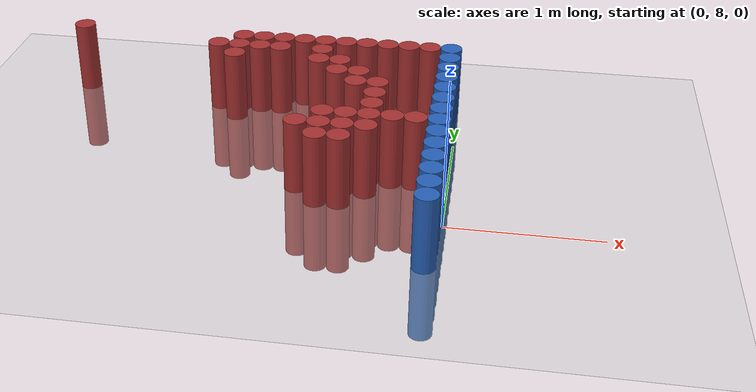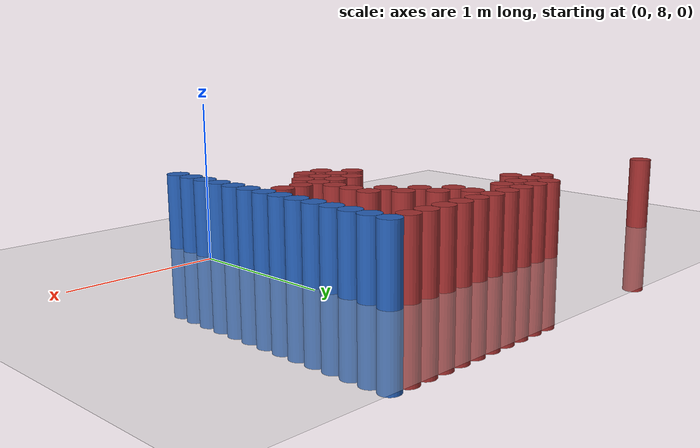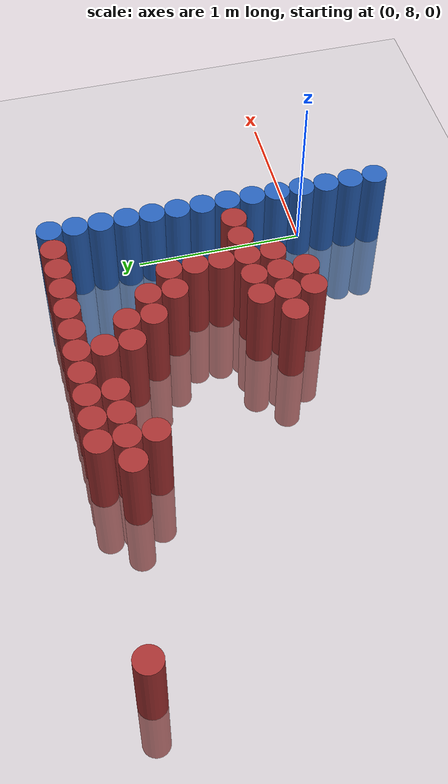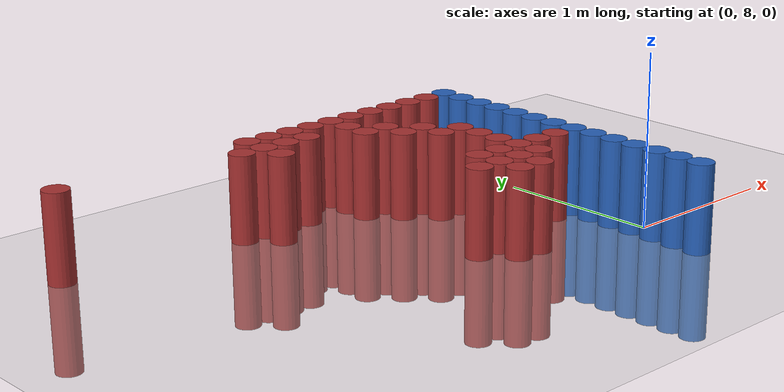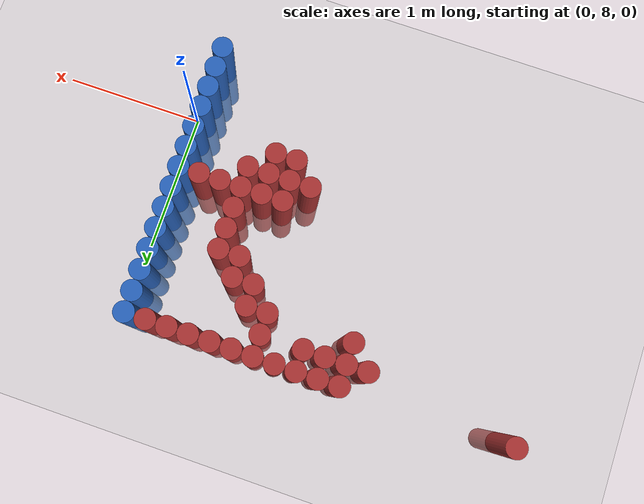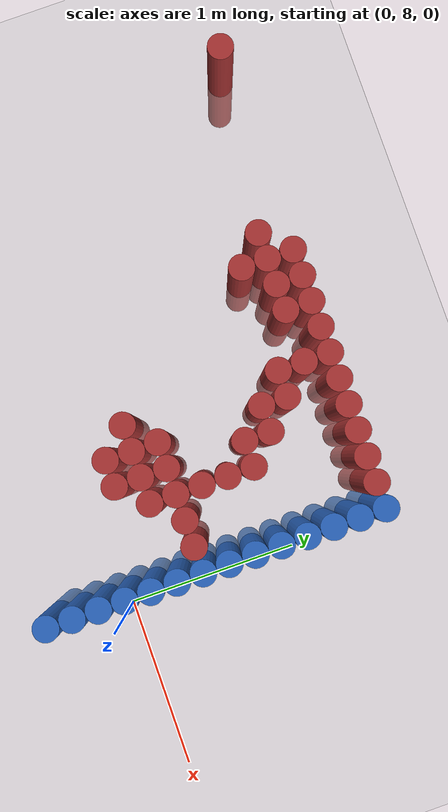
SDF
<sdf version="1.6">
 <world name="default">
  <model name="ground_plane">
   <static>1</static>
   <link name="link">
    <collision name="collision">
     <geometry><plane><normal>0 0 1</normal><size>100 100</size></plane></geometry>
     <surface><friction><ode><mu>100</mu><mu2>50</mu2></ode></friction></surface>
    </collision>
    <visual name="visual">
     <cast_shadows>0</cast_shadows>
     <geometry><plane><normal>0 0 1</normal><size>100 100</size></plane></geometry>
     <material>
      <script><uri>file://media/materials/scripts/gazebo.material</uri><name>Gazebo/Grey</name></script>
     </material>
    </visual>
   </link>
  </model>
  <model name="unit_cylinder_219">
   <static>1</static>
   <pose>-2.775000 9.525000 0.000000 0.000000 0.000000 0.000000</pose>
   <link name="link">
    <inertial>
     <mass>1</mass>
     <inertia><ixx>0.145833</ixx><ixy>0</ixy><ixz>0</ixz><iyy>0.145833</iyy><iyz>0</iyz><izz>0.125</izz></inertia>
    </inertial>
    <collision name="collision">
     <geometry><cylinder><radius>0.075000</radius><length>1</length></cylinder></geometry>
    </collision>
    <visual name="visual">
     <geometry><cylinder><radius>0.075000</radius><length>1</length></cylinder></geometry>
     <material>
      <ambient>0.648000 0.192000 0.192000 1</ambient>
      <diffuse>0.648000 0.192000 0.192000 1</diffuse>
     </material>
     <material>
      <script><name>Gazebo/Grey</name><uri>file://media/materials/scripts/gazebo.material</uri></script>
     </material>
    </visual>
   </link>
  </model>
  <model name="unit_cylinder_236">
   <static>1</static>
   <pose>-1.725000 9.375000 0.000000 0.000000 0.000000 0.000000</pose>
   <link name="link">
    <inertial>
     <mass>1</mass>
     <inertia><ixx>0.145833</ixx><ixy>0</ixy><ixz>0</ixz><iyy>0.145833</iyy><iyz>0</iyz><izz>0.125</izz></inertia>
    </inertial>
    <collision name="collision">
     <geometry><cylinder><radius>0.075000</radius><length>1</length></cylinder></geometry>
    </collision>
    <visual name="visual">
     <geometry><cylinder><radius>0.075000</radius><length>1</length></cylinder></geometry>
     <material>
      <ambient>0.648000 0.192000 0.192000 1</ambient>
      <diffuse>0.648000 0.192000 0.192000 1</diffuse>
     </material>
     <material>
      <script><name>Gazebo/Grey</name><uri>file://media/materials/scripts/gazebo.material</uri></script>
     </material>
    </visual>
   </link>
  </model>
  <model name="unit_cylinder_243">
   <static>1</static>
   <pose>-1.575000 9.225000 0.000000 0.000000 0.000000 0.000000</pose>
   <link name="link">
    <inertial>
     <mass>1</mass>
     <inertia><ixx>0.145833</ixx><ixy>0</ixy><ixz>0</ixz><iyy>0.145833</iyy><iyz>0</iyz><izz>0.125</izz></inertia>
    </inertial>
    <collision name="collision">
     <geometry><cylinder><radius>0.075000</radius><length>1</length></cylinder></geometry>
    </collision>
    <visual name="visual">
     <geometry><cylinder><radius>0.075000</radius><length>1</length></cylinder></geometry>
     <material>
      <ambient>0.648000 0.192000 0.192000 1</ambient>
      <diffuse>0.648000 0.192000 0.192000 1</diffuse>
     </material>
     <material>
      <script><name>Gazebo/Grey</name><uri>file://media/materials/scripts/gazebo.material</uri></script>
     </material>
    </visual>
   </link>
  </model>
  <model name="unit_cylinder_244">
   <static>1</static>
   <pose>-1.575000 9.375000 0.000000 0.000000 0.000000 0.000000</pose>
   <link name="link">
    <inertial>
     <mass>1</mass>
     <inertia><ixx>0.145833</ixx><ixy>0</ixy><ixz>0</ixz><iyy>0.145833</iyy><iyz>0</iyz><izz>0.125</izz></inertia>
    </inertial>
    <collision name="collision">
     <geometry><cylinder><radius>0.075000</radius><length>1</length></cylinder></geometry>
    </collision>
    <visual name="visual">
     <geometry><cylinder><radius>0.075000</radius><length>1</length></cylinder></geometry>
     <material>
      <ambient>0.648000 0.192000 0.192000 1</ambient>
      <diffuse>0.648000 0.192000 0.192000 1</diffuse>
     </material>
     <material>
      <script><name>Gazebo/Grey</name><uri>file://media/materials/scripts/gazebo.material</uri></script>
     </material>
    </visual>
   </link>
  </model>
  <model name="unit_cylinder_245">
   <static>1</static>
   <pose>-1.575000 9.525000 0.000000 0.000000 0.000000 0.000000</pose>
   <link name="link">
    <inertial>
     <mass>1</mass>
     <inertia><ixx>0.145833</ixx><ixy>0</ixy><ixz>0</ixz><iyy>0.145833</iyy><iyz>0</iyz><izz>0.125</izz></inertia>
    </inertial>
    <collision name="collision">
     <geometry><cylinder><radius>0.075000</radius><length>1</length></cylinder></geometry>
    </collision>
    <visual name="visual">
     <geometry><cylinder><radius>0.075000</radius><length>1</length></cylinder></geometry>
     <material>
      <ambient>0.648000 0.192000 0.192000 1</ambient>
      <diffuse>0.648000 0.192000 0.192000 1</diffuse>
     </material>
     <material>
      <script><name>Gazebo/Grey</name><uri>file://media/materials/scripts/gazebo.material</uri></script>
     </material>
    </visual>
   </link>
  </model>
  <model name="unit_cylinder_250">
   <static>1</static>
   <pose>-1.425000 9.375000 0.000000 0.000000 0.000000 0.000000</pose>
   <link name="link">
    <inertial>
     <mass>1</mass>
     <inertia><ixx>0.145833</ixx><ixy>0</ixy><ixz>0</ixz><iyy>0.145833</iyy><iyz>0</iyz><izz>0.125</izz></inertia>
    </inertial>
    <collision name="collision">
     <geometry><cylinder><radius>0.075000</radius><length>1</length></cylinder></geometry>
    </collision>
    <visual name="visual">
     <geometry><cylinder><radius>0.075000</radius><length>1</length></cylinder></geometry>
     <material>
      <ambient>0.648000 0.192000 0.192000 1</ambient>
      <diffuse>0.648000 0.192000 0.192000 1</diffuse>
     </material>
     <material>
      <script><name>Gazebo/Grey</name><uri>file://media/materials/scripts/gazebo.material</uri></script>
     </material>
    </visual>
   </link>
  </model>
  <model name="unit_cylinder_251">
   <static>1</static>
   <pose>-1.425000 9.525000 0.000000 0.000000 0.000000 0.000000</pose>
   <link name="link">
    <inertial>
     <mass>1</mass>
     <inertia><ixx>0.145833</ixx><ixy>0</ixy><ixz>0</ixz><iyy>0.145833</iyy><iyz>0</iyz><izz>0.125</izz></inertia>
    </inertial>
    <collision name="collision">
     <geometry><cylinder><radius>0.075000</radius><length>1</length></cylinder></geometry>
    </collision>
    <visual name="visual">
     <geometry><cylinder><radius>0.075000</radius><length>1</length></cylinder></geometry>
     <material>
      <ambient>0.648000 0.192000 0.192000 1</ambient>
      <diffuse>0.648000 0.192000 0.192000 1</diffuse>
     </material>
     <material>
      <script><name>Gazebo/Grey</name><uri>file://media/materials/scripts/gazebo.material</uri></script>
     </material>
    </visual>
   </link>
  </model>
  <model name="unit_cylinder_258">
   <static>1</static>
   <pose>-1.275000 9.375000 0.000000 0.000000 0.000000 0.000000</pose>
   <link name="link">
    <inertial>
     <mass>1</mass>
     <inertia><ixx>0.145833</ixx><ixy>0</ixy><ixz>0</ixz><iyy>0.145833</iyy><iyz>0</iyz><izz>0.125</izz></inertia>
    </inertial>
    <collision name="collision">
     <geometry><cylinder><radius>0.075000</radius><length>1</length></cylinder></geometry>
    </collision>
    <visual name="visual">
     <geometry><cylinder><radius>0.075000</radius><length>1</length></cylinder></geometry>
     <material>
      <ambient>0.648000 0.192000 0.192000 1</ambient>
      <diffuse>0.648000 0.192000 0.192000 1</diffuse>
     </material>
     <material>
      <script><name>Gazebo/Grey</name><uri>file://media/materials/scripts/gazebo.material</uri></script>
     </material>
    </visual>
   </link>
  </model>
  <model name="unit_cylinder_259">
   <static>1</static>
   <pose>-1.275000 9.525000 0.000000 0.000000 0.000000 0.000000</pose>
   <link name="link">
    <inertial>
     <mass>1</mass>
     <inertia><ixx>0.145833</ixx><ixy>0</ixy><ixz>0</ixz><iyy>0.145833</iyy><iyz>0</iyz><izz>0.125</izz></inertia>
    </inertial>
    <collision name="collision">
     <geometry><cylinder><radius>0.075000</radius><length>1</length></cylinder></geometry>
    </collision>
    <visual name="visual">
     <geometry><cylinder><radius>0.075000</radius><length>1</length></cylinder></geometry>
     <material>
      <ambient>0.648000 0.192000 0.192000 1</ambient>
      <diffuse>0.648000 0.192000 0.192000 1</diffuse>
     </material>
     <material>
      <script><name>Gazebo/Grey</name><uri>file://media/materials/scripts/gazebo.material</uri></script>
     </material>
    </visual>
   </link>
  </model>
  <model name="unit_cylinder_268">
   <static>1</static>
   <pose>-1.125000 9.525000 0.000000 0.000000 0.000000 0.000000</pose>
   <link name="link">
    <inertial>
     <mass>1</mass>
     <inertia><ixx>0.145833</ixx><ixy>0</ixy><ixz>0</ixz><iyy>0.145833</iyy><iyz>0</iyz><izz>0.125</izz></inertia>
    </inertial>
    <collision name="collision">
     <geometry><cylinder><radius>0.075000</radius><length>1</length></cylinder></geometry>
    </collision>
    <visual name="visual">
     <geometry><cylinder><radius>0.075000</radius><length>1</length></cylinder></geometry>
     <material>
      <ambient>0.648000 0.192000 0.192000 1</ambient>
      <diffuse>0.648000 0.192000 0.192000 1</diffuse>
     </material>
     <material>
      <script><name>Gazebo/Grey</name><uri>file://media/materials/scripts/gazebo.material</uri></script>
     </material>
    </visual>
   </link>
  </model>
  <model name="unit_cylinder_275">
   <static>1</static>
   <pose>-0.975000 8.325000 0.000000 0.000000 0.000000 0.000000</pose>
   <link name="link">
    <inertial>
     <mass>1</mass>
     <inertia><ixx>0.145833</ixx><ixy>0</ixy><ixz>0</ixz><iyy>0.145833</iyy><iyz>0</iyz><izz>0.125</izz></inertia>
    </inertial>
    <collision name="collision">
     <geometry><cylinder><radius>0.075000</radius><length>1</length></cylinder></geometry>
    </collision>
    <visual name="visual">
     <geometry><cylinder><radius>0.075000</radius><length>1</length></cylinder></geometry>
     <material>
      <ambient>0.648000 0.192000 0.192000 1</ambient>
      <diffuse>0.648000 0.192000 0.192000 1</diffuse>
     </material>
     <material>
      <script><name>Gazebo/Grey</name><uri>file://media/materials/scripts/gazebo.material</uri></script>
     </material>
    </visual>
   </link>
  </model>
  <model name="unit_cylinder_276">
   <static>1</static>
   <pose>-0.975000 9.225000 0.000000 0.000000 0.000000 0.000000</pose>
   <link name="link">
    <inertial>
     <mass>1</mass>
     <inertia><ixx>0.145833</ixx><ixy>0</ixy><ixz>0</ixz><iyy>0.145833</iyy><iyz>0</iyz><izz>0.125</izz></inertia>
    </inertial>
    <collision name="collision">
     <geometry><cylinder><radius>0.075000</radius><length>1</length></cylinder></geometry>
    </collision>
    <visual name="visual">
     <geometry><cylinder><radius>0.075000</radius><length>1</length></cylinder></geometry>
     <material>
      <ambient>0.648000 0.192000 0.192000 1</ambient>
      <diffuse>0.648000 0.192000 0.192000 1</diffuse>
     </material>
     <material>
      <script><name>Gazebo/Grey</name><uri>file://media/materials/scripts/gazebo.material</uri></script>
     </material>
    </visual>
   </link>
  </model>
  <model name="unit_cylinder_277">
   <static>1</static>
   <pose>-0.975000 9.375000 0.000000 0.000000 0.000000 0.000000</pose>
   <link name="link">
    <inertial>
     <mass>1</mass>
     <inertia><ixx>0.145833</ixx><ixy>0</ixy><ixz>0</ixz><iyy>0.145833</iyy><iyz>0</iyz><izz>0.125</izz></inertia>
    </inertial>
    <collision name="collision">
     <geometry><cylinder><radius>0.075000</radius><length>1</length></cylinder></geometry>
    </collision>
    <visual name="visual">
     <geometry><cylinder><radius>0.075000</radius><length>1</length></cylinder></geometry>
     <material>
      <ambient>0.648000 0.192000 0.192000 1</ambient>
      <diffuse>0.648000 0.192000 0.192000 1</diffuse>
     </material>
     <material>
      <script><name>Gazebo/Grey</name><uri>file://media/materials/scripts/gazebo.material</uri></script>
     </material>
    </visual>
   </link>
  </model>
  <model name="unit_cylinder_278">
   <static>1</static>
   <pose>-0.975000 9.525000 0.000000 0.000000 0.000000 0.000000</pose>
   <link name="link">
    <inertial>
     <mass>1</mass>
     <inertia><ixx>0.145833</ixx><ixy>0</ixy><ixz>0</ixz><iyy>0.145833</iyy><iyz>0</iyz><izz>0.125</izz></inertia>
    </inertial>
    <collision name="collision">
     <geometry><cylinder><radius>0.075000</radius><length>1</length></cylinder></geometry>
    </collision>
    <visual name="visual">
     <geometry><cylinder><radius>0.075000</radius><length>1</length></cylinder></geometry>
     <material>
      <ambient>0.648000 0.192000 0.192000 1</ambient>
      <diffuse>0.648000 0.192000 0.192000 1</diffuse>
     </material>
     <material>
      <script><name>Gazebo/Grey</name><uri>file://media/materials/scripts/gazebo.material</uri></script>
     </material>
    </visual>
   </link>
  </model>
  <model name="unit_cylinder_282">
   <static>1</static>
   <pose>-0.825000 8.175000 0.000000 0.000000 0.000000 0.000000</pose>
   <link name="link">
    <inertial>
     <mass>1</mass>
     <inertia><ixx>0.145833</ixx><ixy>0</ixy><ixz>0</ixz><iyy>0.145833</iyy><iyz>0</iyz><izz>0.125</izz></inertia>
    </inertial>
    <collision name="collision">
     <geometry><cylinder><radius>0.075000</radius><length>1</length></cylinder></geometry>
    </collision>
    <visual name="visual">
     <geometry><cylinder><radius>0.075000</radius><length>1</length></cylinder></geometry>
     <material>
      <ambient>0.648000 0.192000 0.192000 1</ambient>
      <diffuse>0.648000 0.192000 0.192000 1</diffuse>
     </material>
     <material>
      <script><name>Gazebo/Grey</name><uri>file://media/materials/scripts/gazebo.material</uri></script>
     </material>
    </visual>
   </link>
  </model>
  <model name="unit_cylinder_283">
   <static>1</static>
   <pose>-0.825000 8.325000 0.000000 0.000000 0.000000 0.000000</pose>
   <link name="link">
    <inertial>
     <mass>1</mass>
     <inertia><ixx>0.145833</ixx><ixy>0</ixy><ixz>0</ixz><iyy>0.145833</iyy><iyz>0</iyz><izz>0.125</izz></inertia>
    </inertial>
    <collision name="collision">
     <geometry><cylinder><radius>0.075000</radius><length>1</length></cylinder></geometry>
    </collision>
    <visual name="visual">
     <geometry><cylinder><radius>0.075000</radius><length>1</length></cylinder></geometry>
     <material>
      <ambient>0.648000 0.192000 0.192000 1</ambient>
      <diffuse>0.648000 0.192000 0.192000 1</diffuse>
     </material>
     <material>
      <script><name>Gazebo/Grey</name><uri>file://media/materials/scripts/gazebo.material</uri></script>
     </material>
    </visual>
   </link>
  </model>
  <model name="unit_cylinder_284">
   <static>1</static>
   <pose>-0.825000 8.475000 0.000000 0.000000 0.000000 0.000000</pose>
   <link name="link">
    <inertial>
     <mass>1</mass>
     <inertia><ixx>0.145833</ixx><ixy>0</ixy><ixz>0</ixz><iyy>0.145833</iyy><iyz>0</iyz><izz>0.125</izz></inertia>
    </inertial>
    <collision name="collision">
     <geometry><cylinder><radius>0.075000</radius><length>1</length></cylinder></geometry>
    </collision>
    <visual name="visual">
     <geometry><cylinder><radius>0.075000</radius><length>1</length></cylinder></geometry>
     <material>
      <ambient>0.648000 0.192000 0.192000 1</ambient>
      <diffuse>0.648000 0.192000 0.192000 1</diffuse>
     </material>
     <material>
      <script><name>Gazebo/Grey</name><uri>file://media/materials/scripts/gazebo.material</uri></script>
     </material>
    </visual>
   </link>
  </model>
  <model name="unit_cylinder_285">
   <static>1</static>
   <pose>-0.825000 9.075000 0.000000 0.000000 0.000000 0.000000</pose>
   <link name="link">
    <inertial>
     <mass>1</mass>
     <inertia><ixx>0.145833</ixx><ixy>0</ixy><ixz>0</ixz><iyy>0.145833</iyy><iyz>0</iyz><izz>0.125</izz></inertia>
    </inertial>
    <collision name="collision">
     <geometry><cylinder><radius>0.075000</radius><length>1</length></cylinder></geometry>
    </collision>
    <visual name="visual">
     <geometry><cylinder><radius>0.075000</radius><length>1</length></cylinder></geometry>
     <material>
      <ambient>0.648000 0.192000 0.192000 1</ambient>
      <diffuse>0.648000 0.192000 0.192000 1</diffuse>
     </material>
     <material>
      <script><name>Gazebo/Grey</name><uri>file://media/materials/scripts/gazebo.material</uri></script>
     </material>
    </visual>
   </link>
  </model>
  <model name="unit_cylinder_286">
   <static>1</static>
   <pose>-0.825000 9.225000 0.000000 0.000000 0.000000 0.000000</pose>
   <link name="link">
    <inertial>
     <mass>1</mass>
     <inertia><ixx>0.145833</ixx><ixy>0</ixy><ixz>0</ixz><iyy>0.145833</iyy><iyz>0</iyz><izz>0.125</izz></inertia>
    </inertial>
    <collision name="collision">
     <geometry><cylinder><radius>0.075000</radius><length>1</length></cylinder></geometry>
    </collision>
    <visual name="visual">
     <geometry><cylinder><radius>0.075000</radius><length>1</length></cylinder></geometry>
     <material>
      <ambient>0.648000 0.192000 0.192000 1</ambient>
      <diffuse>0.648000 0.192000 0.192000 1</diffuse>
     </material>
     <material>
      <script><name>Gazebo/Grey</name><uri>file://media/materials/scripts/gazebo.material</uri></script>
     </material>
    </visual>
   </link>
  </model>
  <model name="unit_cylinder_287">
   <static>1</static>
   <pose>-0.825000 9.525000 0.000000 0.000000 0.000000 0.000000</pose>
   <link name="link">
    <inertial>
     <mass>1</mass>
     <inertia><ixx>0.145833</ixx><ixy>0</ixy><ixz>0</ixz><iyy>0.145833</iyy><iyz>0</iyz><izz>0.125</izz></inertia>
    </inertial>
    <collision name="collision">
     <geometry><cylinder><radius>0.075000</radius><length>1</length></cylinder></geometry>
    </collision>
    <visual name="visual">
     <geometry><cylinder><radius>0.075000</radius><length>1</length></cylinder></geometry>
     <material>
      <ambient>0.648000 0.192000 0.192000 1</ambient>
      <diffuse>0.648000 0.192000 0.192000 1</diffuse>
     </material>
     <material>
      <script><name>Gazebo/Grey</name><uri>file://media/materials/scripts/gazebo.material</uri></script>
     </material>
    </visual>
   </link>
  </model>
  <model name="unit_cylinder_292">
   <static>1</static>
   <pose>-0.675000 8.175000 0.000000 0.000000 0.000000 0.000000</pose>
   <link name="link">
    <inertial>
     <mass>1</mass>
     <inertia><ixx>0.145833</ixx><ixy>0</ixy><ixz>0</ixz><iyy>0.145833</iyy><iyz>0</iyz><izz>0.125</izz></inertia>
    </inertial>
    <collision name="collision">
     <geometry><cylinder><radius>0.075000</radius><length>1</length></cylinder></geometry>
    </collision>
    <visual name="visual">
     <geometry><cylinder><radius>0.075000</radius><length>1</length></cylinder></geometry>
     <material>
      <ambient>0.648000 0.192000 0.192000 1</ambient>
      <diffuse>0.648000 0.192000 0.192000 1</diffuse>
     </material>
     <material>
      <script><name>Gazebo/Grey</name><uri>file://media/materials/scripts/gazebo.material</uri></script>
     </material>
    </visual>
   </link>
  </model>
  <model name="unit_cylinder_293">
   <static>1</static>
   <pose>-0.675000 8.325000 0.000000 0.000000 0.000000 0.000000</pose>
   <link name="link">
    <inertial>
     <mass>1</mass>
     <inertia><ixx>0.145833</ixx><ixy>0</ixy><ixz>0</ixz><iyy>0.145833</iyy><iyz>0</iyz><izz>0.125</izz></inertia>
    </inertial>
    <collision name="collision">
     <geometry><cylinder><radius>0.075000</radius><length>1</length></cylinder></geometry>
    </collision>
    <visual name="visual">
     <geometry><cylinder><radius>0.075000</radius><length>1</length></cylinder></geometry>
     <material>
      <ambient>0.648000 0.192000 0.192000 1</ambient>
      <diffuse>0.648000 0.192000 0.192000 1</diffuse>
     </material>
     <material>
      <script><name>Gazebo/Grey</name><uri>file://media/materials/scripts/gazebo.material</uri></script>
     </material>
    </visual>
   </link>
  </model>
  <model name="unit_cylinder_294">
   <static>1</static>
   <pose>-0.675000 8.475000 0.000000 0.000000 0.000000 0.000000</pose>
   <link name="link">
    <inertial>
     <mass>1</mass>
     <inertia><ixx>0.145833</ixx><ixy>0</ixy><ixz>0</ixz><iyy>0.145833</iyy><iyz>0</iyz><izz>0.125</izz></inertia>
    </inertial>
    <collision name="collision">
     <geometry><cylinder><radius>0.075000</radius><length>1</length></cylinder></geometry>
    </collision>
    <visual name="visual">
     <geometry><cylinder><radius>0.075000</radius><length>1</length></cylinder></geometry>
     <material>
      <ambient>0.648000 0.192000 0.192000 1</ambient>
      <diffuse>0.648000 0.192000 0.192000 1</diffuse>
     </material>
     <material>
      <script><name>Gazebo/Grey</name><uri>file://media/materials/scripts/gazebo.material</uri></script>
     </material>
    </visual>
   </link>
  </model>
  <model name="unit_cylinder_295">
   <static>1</static>
   <pose>-0.675000 8.925000 0.000000 0.000000 0.000000 0.000000</pose>
   <link name="link">
    <inertial>
     <mass>1</mass>
     <inertia><ixx>0.145833</ixx><ixy>0</ixy><ixz>0</ixz><iyy>0.145833</iyy><iyz>0</iyz><izz>0.125</izz></inertia>
    </inertial>
    <collision name="collision">
     <geometry><cylinder><radius>0.075000</radius><length>1</length></cylinder></geometry>
    </collision>
    <visual name="visual">
     <geometry><cylinder><radius>0.075000</radius><length>1</length></cylinder></geometry>
     <material>
      <ambient>0.648000 0.192000 0.192000 1</ambient>
      <diffuse>0.648000 0.192000 0.192000 1</diffuse>
     </material>
     <material>
      <script><name>Gazebo/Grey</name><uri>file://media/materials/scripts/gazebo.material</uri></script>
     </material>
    </visual>
   </link>
  </model>
  <model name="unit_cylinder_296">
   <static>1</static>
   <pose>-0.675000 9.075000 0.000000 0.000000 0.000000 0.000000</pose>
   <link name="link">
    <inertial>
     <mass>1</mass>
     <inertia><ixx>0.145833</ixx><ixy>0</ixy><ixz>0</ixz><iyy>0.145833</iyy><iyz>0</iyz><izz>0.125</izz></inertia>
    </inertial>
    <collision name="collision">
     <geometry><cylinder><radius>0.075000</radius><length>1</length></cylinder></geometry>
    </collision>
    <visual name="visual">
     <geometry><cylinder><radius>0.075000</radius><length>1</length></cylinder></geometry>
     <material>
      <ambient>0.648000 0.192000 0.192000 1</ambient>
      <diffuse>0.648000 0.192000 0.192000 1</diffuse>
     </material>
     <material>
      <script><name>Gazebo/Grey</name><uri>file://media/materials/scripts/gazebo.material</uri></script>
     </material>
    </visual>
   </link>
  </model>
  <model name="unit_cylinder_297">
   <static>1</static>
   <pose>-0.675000 9.525000 0.000000 0.000000 0.000000 0.000000</pose>
   <link name="link">
    <inertial>
     <mass>1</mass>
     <inertia><ixx>0.145833</ixx><ixy>0</ixy><ixz>0</ixz><iyy>0.145833</iyy><iyz>0</iyz><izz>0.125</izz></inertia>
    </inertial>
    <collision name="collision">
     <geometry><cylinder><radius>0.075000</radius><length>1</length></cylinder></geometry>
    </collision>
    <visual name="visual">
     <geometry><cylinder><radius>0.075000</radius><length>1</length></cylinder></geometry>
     <material>
      <ambient>0.648000 0.192000 0.192000 1</ambient>
      <diffuse>0.648000 0.192000 0.192000 1</diffuse>
     </material>
     <material>
      <script><name>Gazebo/Grey</name><uri>file://media/materials/scripts/gazebo.material</uri></script>
     </material>
    </visual>
   </link>
  </model>
  <model name="unit_cylinder_301">
   <static>1</static>
   <pose>-0.525000 8.325000 0.000000 0.000000 0.000000 0.000000</pose>
   <link name="link">
    <inertial>
     <mass>1</mass>
     <inertia><ixx>0.145833</ixx><ixy>0</ixy><ixz>0</ixz><iyy>0.145833</iyy><iyz>0</iyz><izz>0.125</izz></inertia>
    </inertial>
    <collision name="collision">
     <geometry><cylinder><radius>0.075000</radius><length>1</length></cylinder></geometry>
    </collision>
    <visual name="visual">
     <geometry><cylinder><radius>0.075000</radius><length>1</length></cylinder></geometry>
     <material>
      <ambient>0.648000 0.192000 0.192000 1</ambient>
      <diffuse>0.648000 0.192000 0.192000 1</diffuse>
     </material>
     <material>
      <script><name>Gazebo/Grey</name><uri>file://media/materials/scripts/gazebo.material</uri></script>
     </material>
    </visual>
   </link>
  </model>
  <model name="unit_cylinder_302">
   <static>1</static>
   <pose>-0.525000 8.475000 0.000000 0.000000 0.000000 0.000000</pose>
   <link name="link">
    <inertial>
     <mass>1</mass>
     <inertia><ixx>0.145833</ixx><ixy>0</ixy><ixz>0</ixz><iyy>0.145833</iyy><iyz>0</iyz><izz>0.125</izz></inertia>
    </inertial>
    <collision name="collision">
     <geometry><cylinder><radius>0.075000</radius><length>1</length></cylinder></geometry>
    </collision>
    <visual name="visual">
     <geometry><cylinder><radius>0.075000</radius><length>1</length></cylinder></geometry>
     <material>
      <ambient>0.648000 0.192000 0.192000 1</ambient>
      <diffuse>0.648000 0.192000 0.192000 1</diffuse>
     </material>
     <material>
      <script><name>Gazebo/Grey</name><uri>file://media/materials/scripts/gazebo.material</uri></script>
     </material>
    </visual>
   </link>
  </model>
  <model name="unit_cylinder_303">
   <static>1</static>
   <pose>-0.525000 8.625000 0.000000 0.000000 0.000000 0.000000</pose>
   <link name="link">
    <inertial>
     <mass>1</mass>
     <inertia><ixx>0.145833</ixx><ixy>0</ixy><ixz>0</ixz><iyy>0.145833</iyy><iyz>0</iyz><izz>0.125</izz></inertia>
    </inertial>
    <collision name="collision">
     <geometry><cylinder><radius>0.075000</radius><length>1</length></cylinder></geometry>
    </collision>
    <visual name="visual">
     <geometry><cylinder><radius>0.075000</radius><length>1</length></cylinder></geometry>
     <material>
      <ambient>0.648000 0.192000 0.192000 1</ambient>
      <diffuse>0.648000 0.192000 0.192000 1</diffuse>
     </material>
     <material>
      <script><name>Gazebo/Grey</name><uri>file://media/materials/scripts/gazebo.material</uri></script>
     </material>
    </visual>
   </link>
  </model>
  <model name="unit_cylinder_304">
   <static>1</static>
   <pose>-0.525000 8.775000 0.000000 0.000000 0.000000 0.000000</pose>
   <link name="link">
    <inertial>
     <mass>1</mass>
     <inertia><ixx>0.145833</ixx><ixy>0</ixy><ixz>0</ixz><iyy>0.145833</iyy><iyz>0</iyz><izz>0.125</izz></inertia>
    </inertial>
    <collision name="collision">
     <geometry><cylinder><radius>0.075000</radius><length>1</length></cylinder></geometry>
    </collision>
    <visual name="visual">
     <geometry><cylinder><radius>0.075000</radius><length>1</length></cylinder></geometry>
     <material>
      <ambient>0.648000 0.192000 0.192000 1</ambient>
      <diffuse>0.648000 0.192000 0.192000 1</diffuse>
     </material>
     <material>
      <script><name>Gazebo/Grey</name><uri>file://media/materials/scripts/gazebo.material</uri></script>
     </material>
    </visual>
   </link>
  </model>
  <model name="unit_cylinder_305">
   <static>1</static>
   <pose>-0.525000 8.925000 0.000000 0.000000 0.000000 0.000000</pose>
   <link name="link">
    <inertial>
     <mass>1</mass>
     <inertia><ixx>0.145833</ixx><ixy>0</ixy><ixz>0</ixz><iyy>0.145833</iyy><iyz>0</iyz><izz>0.125</izz></inertia>
    </inertial>
    <collision name="collision">
     <geometry><cylinder><radius>0.075000</radius><length>1</length></cylinder></geometry>
    </collision>
    <visual name="visual">
     <geometry><cylinder><radius>0.075000</radius><length>1</length></cylinder></geometry>
     <material>
      <ambient>0.648000 0.192000 0.192000 1</ambient>
      <diffuse>0.648000 0.192000 0.192000 1</diffuse>
     </material>
     <material>
      <script><name>Gazebo/Grey</name><uri>file://media/materials/scripts/gazebo.material</uri></script>
     </material>
    </visual>
   </link>
  </model>
  <model name="unit_cylinder_306">
   <static>1</static>
   <pose>-0.525000 9.525000 0.000000 0.000000 0.000000 0.000000</pose>
   <link name="link">
    <inertial>
     <mass>1</mass>
     <inertia><ixx>0.145833</ixx><ixy>0</ixy><ixz>0</ixz><iyy>0.145833</iyy><iyz>0</iyz><izz>0.125</izz></inertia>
    </inertial>
    <collision name="collision">
     <geometry><cylinder><radius>0.075000</radius><length>1</length></cylinder></geometry>
    </collision>
    <visual name="visual">
     <geometry><cylinder><radius>0.075000</radius><length>1</length></cylinder></geometry>
     <material>
      <ambient>0.648000 0.192000 0.192000 1</ambient>
      <diffuse>0.648000 0.192000 0.192000 1</diffuse>
     </material>
     <material>
      <script><name>Gazebo/Grey</name><uri>file://media/materials/scripts/gazebo.material</uri></script>
     </material>
    </visual>
   </link>
  </model>
  <model name="unit_cylinder_311">
   <static>1</static>
   <pose>-0.375000 8.475000 0.000000 0.000000 0.000000 0.000000</pose>
   <link name="link">
    <inertial>
     <mass>1</mass>
     <inertia><ixx>0.145833</ixx><ixy>0</ixy><ixz>0</ixz><iyy>0.145833</iyy><iyz>0</iyz><izz>0.125</izz></inertia>
    </inertial>
    <collision name="collision">
     <geometry><cylinder><radius>0.075000</radius><length>1</length></cylinder></geometry>
    </collision>
    <visual name="visual">
     <geometry><cylinder><radius>0.075000</radius><length>1</length></cylinder></geometry>
     <material>
      <ambient>0.648000 0.192000 0.192000 1</ambient>
      <diffuse>0.648000 0.192000 0.192000 1</diffuse>
     </material>
     <material>
      <script><name>Gazebo/Grey</name><uri>file://media/materials/scripts/gazebo.material</uri></script>
     </material>
    </visual>
   </link>
  </model>
  <model name="unit_cylinder_312">
   <static>1</static>
   <pose>-0.375000 9.525000 0.000000 0.000000 0.000000 0.000000</pose>
   <link name="link">
    <inertial>
     <mass>1</mass>
     <inertia><ixx>0.145833</ixx><ixy>0</ixy><ixz>0</ixz><iyy>0.145833</iyy><iyz>0</iyz><izz>0.125</izz></inertia>
    </inertial>
    <collision name="collision">
     <geometry><cylinder><radius>0.075000</radius><length>1</length></cylinder></geometry>
    </collision>
    <visual name="visual">
     <geometry><cylinder><radius>0.075000</radius><length>1</length></cylinder></geometry>
     <material>
      <ambient>0.648000 0.192000 0.192000 1</ambient>
      <diffuse>0.648000 0.192000 0.192000 1</diffuse>
     </material>
     <material>
      <script><name>Gazebo/Grey</name><uri>file://media/materials/scripts/gazebo.material</uri></script>
     </material>
    </visual>
   </link>
  </model>
  <model name="unit_cylinder_315">
   <static>1</static>
   <pose>-0.225000 8.475000 0.000000 0.000000 0.000000 0.000000</pose>
   <link name="link">
    <inertial>
     <mass>1</mass>
     <inertia><ixx>0.145833</ixx><ixy>0</ixy><ixz>0</ixz><iyy>0.145833</iyy><iyz>0</iyz><izz>0.125</izz></inertia>
    </inertial>
    <collision name="collision">
     <geometry><cylinder><radius>0.075000</radius><length>1</length></cylinder></geometry>
    </collision>
    <visual name="visual">
     <geometry><cylinder><radius>0.075000</radius><length>1</length></cylinder></geometry>
     <material>
      <ambient>0.648000 0.192000 0.192000 1</ambient>
      <diffuse>0.648000 0.192000 0.192000 1</diffuse>
     </material>
     <material>
      <script><name>Gazebo/Grey</name><uri>file://media/materials/scripts/gazebo.material</uri></script>
     </material>
    </visual>
   </link>
  </model>
  <model name="unit_cylinder_316">
   <static>1</static>
   <pose>-0.225000 9.525000 0.000000 0.000000 0.000000 0.000000</pose>
   <link name="link">
    <inertial>
     <mass>1</mass>
     <inertia><ixx>0.145833</ixx><ixy>0</ixy><ixz>0</ixz><iyy>0.145833</iyy><iyz>0</iyz><izz>0.125</izz></inertia>
    </inertial>
    <collision name="collision">
     <geometry><cylinder><radius>0.075000</radius><length>1</length></cylinder></geometry>
    </collision>
    <visual name="visual">
     <geometry><cylinder><radius>0.075000</radius><length>1</length></cylinder></geometry>
     <material>
      <ambient>0.648000 0.192000 0.192000 1</ambient>
      <diffuse>0.648000 0.192000 0.192000 1</diffuse>
     </material>
     <material>
      <script><name>Gazebo/Grey</name><uri>file://media/materials/scripts/gazebo.material</uri></script>
     </material>
    </visual>
   </link>
  </model>
  <model name="unit_cylinder_333">
   <static>1</static>
   <pose>-0.075000 7.575000 0.000000 0.000000 0.000000 0.000000</pose>
   <link name="link">
    <inertial>
     <mass>1</mass>
     <inertia><ixx>0.145833</ixx><ixy>0</ixy><ixz>0</ixz><iyy>0.145833</iyy><iyz>0</iyz><izz>0.125</izz></inertia>
    </inertial>
    <collision name="collision">
     <geometry><cylinder><radius>0.075000</radius><length>1</length></cylinder></geometry>
    </collision>
    <visual name="visual">
     <geometry><cylinder><radius>0.075000</radius><length>1</length></cylinder></geometry>
     <material>
      <ambient>0.152000 0.379000 0.720000 1</ambient>
      <diffuse>0.152000 0.379000 0.720000 1</diffuse>
     </material>
     <material>
      <script><name>Gazebo/Grey</name><uri>file://media/materials/scripts/gazebo.material</uri></script>
     </material>
    </visual>
   </link>
  </model>
  <model name="unit_cylinder_334">
   <static>1</static>
   <pose>-0.075000 7.725000 0.000000 0.000000 0.000000 0.000000</pose>
   <link name="link">
    <inertial>
     <mass>1</mass>
     <inertia><ixx>0.145833</ixx><ixy>0</ixy><ixz>0</ixz><iyy>0.145833</iyy><iyz>0</iyz><izz>0.125</izz></inertia>
    </inertial>
    <collision name="collision">
     <geometry><cylinder><radius>0.075000</radius><length>1</length></cylinder></geometry>
    </collision>
    <visual name="visual">
     <geometry><cylinder><radius>0.075000</radius><length>1</length></cylinder></geometry>
     <material>
      <ambient>0.152000 0.379000 0.720000 1</ambient>
      <diffuse>0.152000 0.379000 0.720000 1</diffuse>
     </material>
     <material>
      <script><name>Gazebo/Grey</name><uri>file://media/materials/scripts/gazebo.material</uri></script>
     </material>
    </visual>
   </link>
  </model>
  <model name="unit_cylinder_335">
   <static>1</static>
   <pose>-0.075000 7.875000 0.000000 0.000000 0.000000 0.000000</pose>
   <link name="link">
    <inertial>
     <mass>1</mass>
     <inertia><ixx>0.145833</ixx><ixy>0</ixy><ixz>0</ixz><iyy>0.145833</iyy><iyz>0</iyz><izz>0.125</izz></inertia>
    </inertial>
    <collision name="collision">
     <geometry><cylinder><radius>0.075000</radius><length>1</length></cylinder></geometry>
    </collision>
    <visual name="visual">
     <geometry><cylinder><radius>0.075000</radius><length>1</length></cylinder></geometry>
     <material>
      <ambient>0.152000 0.379000 0.720000 1</ambient>
      <diffuse>0.152000 0.379000 0.720000 1</diffuse>
     </material>
     <material>
      <script><name>Gazebo/Grey</name><uri>file://media/materials/scripts/gazebo.material</uri></script>
     </material>
    </visual>
   </link>
  </model>
  <model name="unit_cylinder_336">
   <static>1</static>
   <pose>-0.075000 8.025000 0.000000 0.000000 0.000000 0.000000</pose>
   <link name="link">
    <inertial>
     <mass>1</mass>
     <inertia><ixx>0.145833</ixx><ixy>0</ixy><ixz>0</ixz><iyy>0.145833</iyy><iyz>0</iyz><izz>0.125</izz></inertia>
    </inertial>
    <collision name="collision">
     <geometry><cylinder><radius>0.075000</radius><length>1</length></cylinder></geometry>
    </collision>
    <visual name="visual">
     <geometry><cylinder><radius>0.075000</radius><length>1</length></cylinder></geometry>
     <material>
      <ambient>0.152000 0.379000 0.720000 1</ambient>
      <diffuse>0.152000 0.379000 0.720000 1</diffuse>
     </material>
     <material>
      <script><name>Gazebo/Grey</name><uri>file://media/materials/scripts/gazebo.material</uri></script>
     </material>
    </visual>
   </link>
  </model>
  <model name="unit_cylinder_337">
   <static>1</static>
   <pose>-0.075000 8.175000 0.000000 0.000000 0.000000 0.000000</pose>
   <link name="link">
    <inertial>
     <mass>1</mass>
     <inertia><ixx>0.145833</ixx><ixy>0</ixy><ixz>0</ixz><iyy>0.145833</iyy><iyz>0</iyz><izz>0.125</izz></inertia>
    </inertial>
    <collision name="collision">
     <geometry><cylinder><radius>0.075000</radius><length>1</length></cylinder></geometry>
    </collision>
    <visual name="visual">
     <geometry><cylinder><radius>0.075000</radius><length>1</length></cylinder></geometry>
     <material>
      <ambient>0.152000 0.379000 0.720000 1</ambient>
      <diffuse>0.152000 0.379000 0.720000 1</diffuse>
     </material>
     <material>
      <script><name>Gazebo/Grey</name><uri>file://media/materials/scripts/gazebo.material</uri></script>
     </material>
    </visual>
   </link>
  </model>
  <model name="unit_cylinder_338">
   <static>1</static>
   <pose>-0.075000 8.325000 0.000000 0.000000 0.000000 0.000000</pose>
   <link name="link">
    <inertial>
     <mass>1</mass>
     <inertia><ixx>0.145833</ixx><ixy>0</ixy><ixz>0</ixz><iyy>0.145833</iyy><iyz>0</iyz><izz>0.125</izz></inertia>
    </inertial>
    <collision name="collision">
     <geometry><cylinder><radius>0.075000</radius><length>1</length></cylinder></geometry>
    </collision>
    <visual name="visual">
     <geometry><cylinder><radius>0.075000</radius><length>1</length></cylinder></geometry>
     <material>
      <ambient>0.152000 0.379000 0.720000 1</ambient>
      <diffuse>0.152000 0.379000 0.720000 1</diffuse>
     </material>
     <material>
      <script><name>Gazebo/Grey</name><uri>file://media/materials/scripts/gazebo.material</uri></script>
     </material>
    </visual>
   </link>
  </model>
  <model name="unit_cylinder_339">
   <static>1</static>
   <pose>-0.075000 8.475000 0.000000 0.000000 0.000000 0.000000</pose>
   <link name="link">
    <inertial>
     <mass>1</mass>
     <inertia><ixx>0.145833</ixx><ixy>0</ixy><ixz>0</ixz><iyy>0.145833</iyy><iyz>0</iyz><izz>0.125</izz></inertia>
    </inertial>
    <collision name="collision">
     <geometry><cylinder><radius>0.075000</radius><length>1</length></cylinder></geometry>
    </collision>
    <visual name="visual">
     <geometry><cylinder><radius>0.075000</radius><length>1</length></cylinder></geometry>
     <material>
      <ambient>0.152000 0.379000 0.720000 1</ambient>
      <diffuse>0.152000 0.379000 0.720000 1</diffuse>
     </material>
     <material>
      <script><name>Gazebo/Grey</name><uri>file://media/materials/scripts/gazebo.material</uri></script>
     </material>
    </visual>
   </link>
  </model>
  <model name="unit_cylinder_340">
   <static>1</static>
   <pose>-0.075000 8.625000 0.000000 0.000000 0.000000 0.000000</pose>
   <link name="link">
    <inertial>
     <mass>1</mass>
     <inertia><ixx>0.145833</ixx><ixy>0</ixy><ixz>0</ixz><iyy>0.145833</iyy><iyz>0</iyz><izz>0.125</izz></inertia>
    </inertial>
    <collision name="collision">
     <geometry><cylinder><radius>0.075000</radius><length>1</length></cylinder></geometry>
    </collision>
    <visual name="visual">
     <geometry><cylinder><radius>0.075000</radius><length>1</length></cylinder></geometry>
     <material>
      <ambient>0.152000 0.379000 0.720000 1</ambient>
      <diffuse>0.152000 0.379000 0.720000 1</diffuse>
     </material>
     <material>
      <script><name>Gazebo/Grey</name><uri>file://media/materials/scripts/gazebo.material</uri></script>
     </material>
    </visual>
   </link>
  </model>
  <model name="unit_cylinder_341">
   <static>1</static>
   <pose>-0.075000 8.775000 0.000000 0.000000 0.000000 0.000000</pose>
   <link name="link">
    <inertial>
     <mass>1</mass>
     <inertia><ixx>0.145833</ixx><ixy>0</ixy><ixz>0</ixz><iyy>0.145833</iyy><iyz>0</iyz><izz>0.125</izz></inertia>
    </inertial>
    <collision name="collision">
     <geometry><cylinder><radius>0.075000</radius><length>1</length></cylinder></geometry>
    </collision>
    <visual name="visual">
     <geometry><cylinder><radius>0.075000</radius><length>1</length></cylinder></geometry>
     <material>
      <ambient>0.152000 0.379000 0.720000 1</ambient>
      <diffuse>0.152000 0.379000 0.720000 1</diffuse>
     </material>
     <material>
      <script><name>Gazebo/Grey</name><uri>file://media/materials/scripts/gazebo.material</uri></script>
     </material>
    </visual>
   </link>
  </model>
  <model name="unit_cylinder_342">
   <static>1</static>
   <pose>-0.075000 8.925000 0.000000 0.000000 0.000000 0.000000</pose>
   <link name="link">
    <inertial>
     <mass>1</mass>
     <inertia><ixx>0.145833</ixx><ixy>0</ixy><ixz>0</ixz><iyy>0.145833</iyy><iyz>0</iyz><izz>0.125</izz></inertia>
    </inertial>
    <collision name="collision">
     <geometry><cylinder><radius>0.075000</radius><length>1</length></cylinder></geometry>
    </collision>
    <visual name="visual">
     <geometry><cylinder><radius>0.075000</radius><length>1</length></cylinder></geometry>
     <material>
      <ambient>0.152000 0.379000 0.720000 1</ambient>
      <diffuse>0.152000 0.379000 0.720000 1</diffuse>
     </material>
     <material>
      <script><name>Gazebo/Grey</name><uri>file://media/materials/scripts/gazebo.material</uri></script>
     </material>
    </visual>
   </link>
  </model>
  <model name="unit_cylinder_343">
   <static>1</static>
   <pose>-0.075000 9.075000 0.000000 0.000000 0.000000 0.000000</pose>
   <link name="link">
    <inertial>
     <mass>1</mass>
     <inertia><ixx>0.145833</ixx><ixy>0</ixy><ixz>0</ixz><iyy>0.145833</iyy><iyz>0</iyz><izz>0.125</izz></inertia>
    </inertial>
    <collision name="collision">
     <geometry><cylinder><radius>0.075000</radius><length>1</length></cylinder></geometry>
    </collision>
    <visual name="visual">
     <geometry><cylinder><radius>0.075000</radius><length>1</length></cylinder></geometry>
     <material>
      <ambient>0.152000 0.379000 0.720000 1</ambient>
      <diffuse>0.152000 0.379000 0.720000 1</diffuse>
     </material>
     <material>
      <script><name>Gazebo/Grey</name><uri>file://media/materials/scripts/gazebo.material</uri></script>
     </material>
    </visual>
   </link>
  </model>
  <model name="unit_cylinder_344">
   <static>1</static>
   <pose>-0.075000 9.225000 0.000000 0.000000 0.000000 0.000000</pose>
   <link name="link">
    <inertial>
     <mass>1</mass>
     <inertia><ixx>0.145833</ixx><ixy>0</ixy><ixz>0</ixz><iyy>0.145833</iyy><iyz>0</iyz><izz>0.125</izz></inertia>
    </inertial>
    <collision name="collision">
     <geometry><cylinder><radius>0.075000</radius><length>1</length></cylinder></geometry>
    </collision>
    <visual name="visual">
     <geometry><cylinder><radius>0.075000</radius><length>1</length></cylinder></geometry>
     <material>
      <ambient>0.152000 0.379000 0.720000 1</ambient>
      <diffuse>0.152000 0.379000 0.720000 1</diffuse>
     </material>
     <material>
      <script><name>Gazebo/Grey</name><uri>file://media/materials/scripts/gazebo.material</uri></script>
     </material>
    </visual>
   </link>
  </model>
  <model name="unit_cylinder_345">
   <static>1</static>
   <pose>-0.075000 9.375000 0.000000 0.000000 0.000000 0.000000</pose>
   <link name="link">
    <inertial>
     <mass>1</mass>
     <inertia><ixx>0.145833</ixx><ixy>0</ixy><ixz>0</ixz><iyy>0.145833</iyy><iyz>0</iyz><izz>0.125</izz></inertia>
    </inertial>
    <collision name="collision">
     <geometry><cylinder><radius>0.075000</radius><length>1</length></cylinder></geometry>
    </collision>
    <visual name="visual">
     <geometry><cylinder><radius>0.075000</radius><length>1</length></cylinder></geometry>
     <material>
      <ambient>0.152000 0.379000 0.720000 1</ambient>
      <diffuse>0.152000 0.379000 0.720000 1</diffuse>
     </material>
     <material>
      <script><name>Gazebo/Grey</name><uri>file://media/materials/scripts/gazebo.material</uri></script>
     </material>
    </visual>
   </link>
  </model>
  <model name="unit_cylinder_346">
   <static>1</static>
   <pose>-0.075000 9.525000 0.000000 0.000000 0.000000 0.000000</pose>
   <link name="link">
    <inertial>
     <mass>1</mass>
     <inertia><ixx>0.145833</ixx><ixy>0</ixy><ixz>0</ixz><iyy>0.145833</iyy><iyz>0</iyz><izz>0.125</izz></inertia>
    </inertial>
    <collision name="collision">
     <geometry><cylinder><radius>0.075000</radius><length>1</length></cylinder></geometry>
    </collision>
    <visual name="visual">
     <geometry><cylinder><radius>0.075000</radius><length>1</length></cylinder></geometry>
     <material>
      <ambient>0.152000 0.379000 0.720000 1</ambient>
      <diffuse>0.152000 0.379000 0.720000 1</diffuse>
     </material>
     <material>
      <script><name>Gazebo/Grey</name><uri>file://media/materials/scripts/gazebo.material</uri></script>
     </material>
    </visual>
   </link>
  </model>
 </world>
</sdf>
